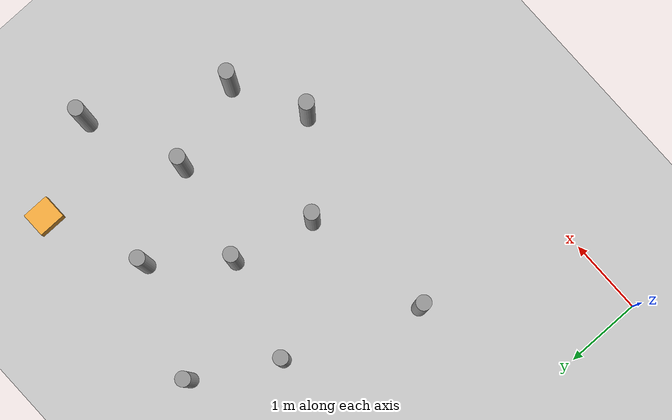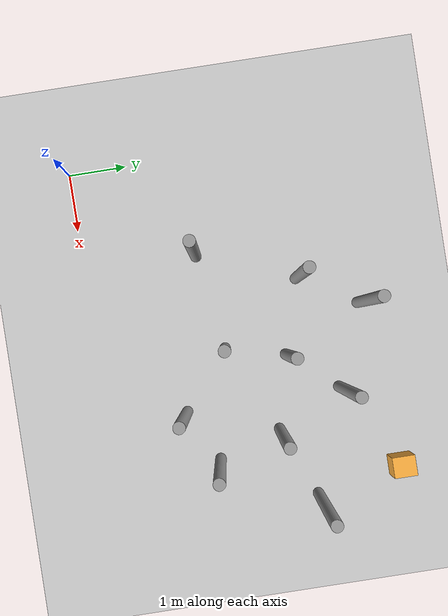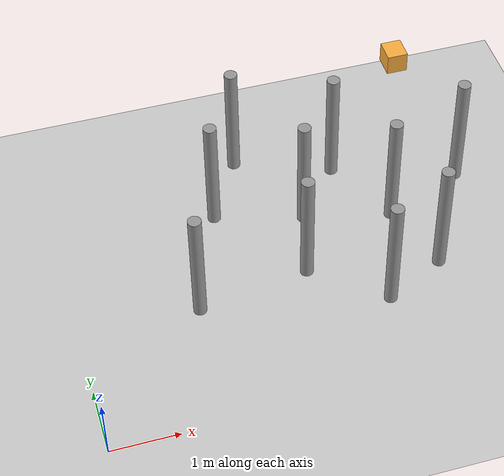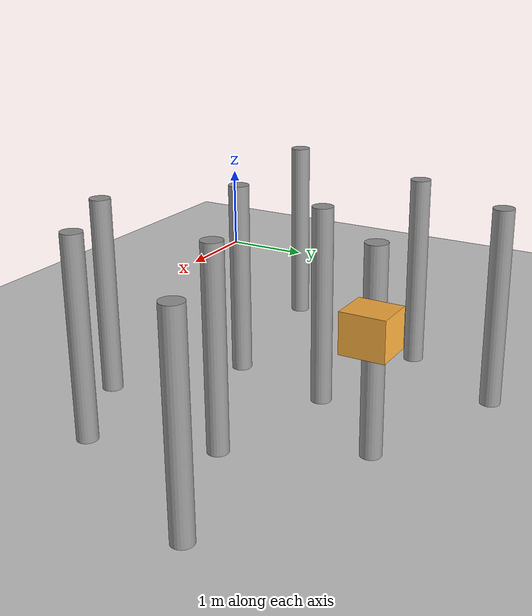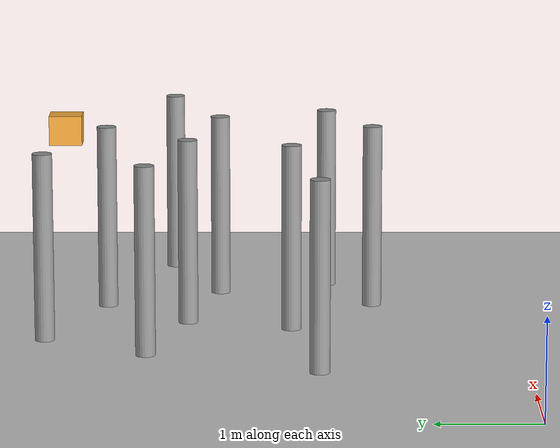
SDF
<sdf version="1.6">
 <world name="default">
  <light name="sun" type="directional">
   <pose>0 0 10 0 -0 0</pose>
   <diffuse>0.8 0.8 0.8 1</diffuse>
   <specular>0.2 0.2 0.2 1</specular>
   <attenuation>
    <range>1000</range>
    <constant>0.9</constant>
    <linear>0.01</linear>
    <quadratic>0.001</quadratic>
   </attenuation>
   <direction>-0.5 0.1 -0.9</direction>
  </light>
  <plugin name="ros_interface_plugin" filename="librotors_gazebo_ros_interface_plugin.so"/>
  <model name="ground_plane">
   <static>1</static>
   <link name="link">
    <collision name="collision">
     <geometry><plane><normal>0 0 1</normal><size>100 100</size></plane></geometry>
     <surface>
      <contact><collide_bitmask>65535</collide_bitmask></contact>
      <friction><ode><mu>100</mu><mu2>50</mu2></ode></friction>
     </surface>
    </collision>
    <visual name="visual">
     <cast_shadows>0</cast_shadows>
     <geometry><plane><normal>0 0 1</normal><size>100 100</size></plane></geometry>
     <material>
      <script><uri>file://media/materials/scripts/gazebo.material</uri><name>Gazebo/Grey</name></script>
     </material>
    </visual>
   </link>
  </model>
  <gravity>0 0 -9.8</gravity>
  <magnetic_field>6e-06 2.3e-05 -4.2e-05</magnetic_field>
  <atmosphere type="adiabatic"/>
  <physics name="default_physics" default="0" type="ode">
   <max_step_size>0.001</max_step_size>
   <real_time_factor>1</real_time_factor>
   <real_time_update_rate>1000</real_time_update_rate>
  </physics>
  <scene><ambient>0.4 0.4 0.4 1</ambient><background>0.7 0.7 0.7 1</background><shadows>1</shadows></scene>
  <spherical_coordinates>
   <surface_model>EARTH_WGS84</surface_model>
   <latitude_deg>0</latitude_deg>
   <longitude_deg>0</longitude_deg>
   <elevation>0</elevation>
   <heading_deg>0</heading_deg>
  </spherical_coordinates>
  <model name="obstacle1">
   <link name="link">
    <inertial>
     <mass>112.569</mass>
     <inertia><ixx>33.2512</ixx><ixy>0</ixy><ixz>0</ixz><iyy>33.2512</iyy><iyz>0</iyz><izz>0.537779</izz></inertia>
    </inertial>
    <visual name="visual">
     <geometry><cylinder><radius>0.097748</radius><length>1.87509</length></cylinder></geometry>
     <material>
      <script><name>Gazebo/Grey</name><uri>file://media/materials/scripts/gazebo.material</uri></script>
      <shader type="pixel"><normal_map>__default__</normal_map></shader>
     </material>
    </visual>
    <collision name="collision">
     <geometry><cylinder><radius>0.097748</radius><length>1.87509</length></cylinder></geometry>
     <surface>
      <friction>
       <ode><mu>1</mu><mu2>1</mu2><fdir1>0 0 0</fdir1><slip1>0</slip1><slip2>0</slip2></ode>
       <torsional>
        <coefficient>1</coefficient>
        <patch_radius>0</patch_radius>
        <surface_radius>0</surface_radius>
        <use_patch_radius>1</use_patch_radius>
        <ode><slip>0</slip></ode>
       </torsional>
      </friction>
      <bounce><restitution_coefficient>0</restitution_coefficient><threshold>1e+06</threshold></bounce>
      <contact>
       <collide_without_contact>0</collide_without_contact>
       <collide_without_contact_bitmask>1</collide_without_contact_bitmask>
       <collide_bitmask>1</collide_bitmask>
       <ode>
        <soft_cfm>0</soft_cfm>
        <soft_erp>0.2</soft_erp>
        <kp>1e+13</kp>
        <kd>1</kd>
        <max_vel>0.01</max_vel>
        <min_depth>0</min_depth>
       </ode>
       <bullet>
        <split_impulse>1</split_impulse>
        <split_impulse_penetration_threshold>-0.01</split_impulse_penetration_threshold>
        <soft_cfm>0</soft_cfm>
        <soft_erp>0.2</soft_erp>
        <kp>1e+13</kp>
        <kd>1</kd>
       </bullet>
      </contact>
     </surface>
    </collision>
   </link>
   <static>0</static>
   <pose>3.44469 2.26258 0.937536 0 0 -0.000585</pose>
  </model>
  <model name="obstacle2">
   <link name="link">
    <inertial>
     <mass>112.569</mass>
     <inertia><ixx>33.2512</ixx><ixy>0</ixy><ixz>0</ixz><iyy>33.2512</iyy><iyz>0</iyz><izz>0.537779</izz></inertia>
    </inertial>
    <visual name="visual">
     <geometry><cylinder><radius>0.097748</radius><length>1.87509</length></cylinder></geometry>
     <material>
      <script><name>Gazebo/Grey</name><uri>file://media/materials/scripts/gazebo.material</uri></script>
      <shader type="pixel"><normal_map>__default__</normal_map></shader>
     </material>
    </visual>
    <collision name="collision">
     <geometry><cylinder><radius>0.097748</radius><length>1.87509</length></cylinder></geometry>
     <surface>
      <friction>
       <ode><mu>1</mu><mu2>1</mu2><fdir1>0 0 0</fdir1><slip1>0</slip1><slip2>0</slip2></ode>
       <torsional>
        <coefficient>1</coefficient>
        <patch_radius>0</patch_radius>
        <surface_radius>0</surface_radius>
        <use_patch_radius>1</use_patch_radius>
        <ode><slip>0</slip></ode>
       </torsional>
      </friction>
      <bounce><restitution_coefficient>0</restitution_coefficient><threshold>1e+06</threshold></bounce>
      <contact>
       <collide_without_contact>0</collide_without_contact>
       <collide_without_contact_bitmask>1</collide_without_contact_bitmask>
       <collide_bitmask>1</collide_bitmask>
       <ode>
        <soft_cfm>0</soft_cfm>
        <soft_erp>0.2</soft_erp>
        <kp>1e+13</kp>
        <kd>1</kd>
        <max_vel>0.01</max_vel>
        <min_depth>0</min_depth>
       </ode>
       <bullet>
        <split_impulse>1</split_impulse>
        <split_impulse_penetration_threshold>-0.01</split_impulse_penetration_threshold>
        <soft_cfm>0</soft_cfm>
        <soft_erp>0.2</soft_erp>
        <kp>1e+13</kp>
        <kd>1</kd>
       </bullet>
      </contact>
     </surface>
    </collision>
   </link>
   <static>0</static>
   <pose>2.41446 3.68091 0.937536 0 0 -0.000526</pose>
  </model>
  <model name="obstacle3">
   <link name="link">
    <inertial>
     <mass>112.569</mass>
     <inertia><ixx>33.2512</ixx><ixy>0</ixy><ixz>0</ixz><iyy>33.2512</iyy><iyz>0</iyz><izz>0.537779</izz></inertia>
    </inertial>
    <visual name="visual">
     <geometry><cylinder><radius>0.097748</radius><length>1.87509</length></cylinder></geometry>
     <material>
      <script><name>Gazebo/Grey</name><uri>file://media/materials/scripts/gazebo.material</uri></script>
      <shader type="pixel"><normal_map>__default__</normal_map></shader>
     </material>
    </visual>
    <collision name="collision">
     <geometry><cylinder><radius>0.097748</radius><length>1.87509</length></cylinder></geometry>
     <surface>
      <friction>
       <ode><mu>1</mu><mu2>1</mu2><fdir1>0 0 0</fdir1><slip1>0</slip1><slip2>0</slip2></ode>
       <torsional>
        <coefficient>1</coefficient>
        <patch_radius>0</patch_radius>
        <surface_radius>0</surface_radius>
        <use_patch_radius>1</use_patch_radius>
        <ode><slip>0</slip></ode>
       </torsional>
      </friction>
      <bounce><restitution_coefficient>0</restitution_coefficient><threshold>1e+06</threshold></bounce>
      <contact>
       <collide_without_contact>0</collide_without_contact>
       <collide_without_contact_bitmask>1</collide_without_contact_bitmask>
       <collide_bitmask>1</collide_bitmask>
       <ode>
        <soft_cfm>0</soft_cfm>
        <soft_erp>0.2</soft_erp>
        <kp>1e+13</kp>
        <kd>1</kd>
        <max_vel>0.01</max_vel>
        <min_depth>0</min_depth>
       </ode>
       <bullet>
        <split_impulse>1</split_impulse>
        <split_impulse_penetration_threshold>-0.01</split_impulse_penetration_threshold>
        <soft_cfm>0</soft_cfm>
        <soft_erp>0.2</soft_erp>
        <kp>1e+13</kp>
        <kd>1</kd>
       </bullet>
      </contact>
     </surface>
    </collision>
   </link>
   <static>0</static>
   <pose>4.42025 4.1502 0.937536 0 0 -0.000546</pose>
  </model>
  <model name="obstacle4">
   <link name="link">
    <inertial>
     <mass>112.569</mass>
     <inertia><ixx>33.2512</ixx><ixy>0</ixy><ixz>0</ixz><iyy>33.2512</iyy><iyz>0</iyz><izz>0.537779</izz></inertia>
    </inertial>
    <visual name="visual">
     <geometry><cylinder><radius>0.097748</radius><length>1.87509</length></cylinder></geometry>
     <material>
      <script><name>Gazebo/Grey</name><uri>file://media/materials/scripts/gazebo.material</uri></script>
      <shader type="pixel"><normal_map>__default__</normal_map></shader>
     </material>
    </visual>
    <collision name="collision">
     <geometry><cylinder><radius>0.097748</radius><length>1.87509</length></cylinder></geometry>
     <surface>
      <friction>
       <ode><mu>1</mu><mu2>1</mu2><fdir1>0 0 0</fdir1><slip1>0</slip1><slip2>0</slip2></ode>
       <torsional>
        <coefficient>1</coefficient>
        <patch_radius>0</patch_radius>
        <surface_radius>0</surface_radius>
        <use_patch_radius>1</use_patch_radius>
        <ode><slip>0</slip></ode>
       </torsional>
      </friction>
      <bounce><restitution_coefficient>0</restitution_coefficient><threshold>1e+06</threshold></bounce>
      <contact>
       <collide_without_contact>0</collide_without_contact>
       <collide_without_contact_bitmask>1</collide_without_contact_bitmask>
       <collide_bitmask>1</collide_bitmask>
       <ode>
        <soft_cfm>0</soft_cfm>
        <soft_erp>0.2</soft_erp>
        <kp>1e+13</kp>
        <kd>1</kd>
        <max_vel>0.01</max_vel>
        <min_depth>0</min_depth>
       </ode>
       <bullet>
        <split_impulse>1</split_impulse>
        <split_impulse_penetration_threshold>-0.01</split_impulse_penetration_threshold>
        <soft_cfm>0</soft_cfm>
        <soft_erp>0.2</soft_erp>
        <kp>1e+13</kp>
        <kd>1</kd>
       </bullet>
      </contact>
     </surface>
    </collision>
   </link>
   <static>0</static>
   <pose>5.00001 3.00001 0.937536 -0 -0 -0.000622</pose>
  </model>
  <model name="obstacle5">
   <link name="link">
    <inertial>
     <mass>112.569</mass>
     <inertia><ixx>33.2512</ixx><ixy>0</ixy><ixz>0</ixz><iyy>33.2512</iyy><iyz>0</iyz><izz>0.537779</izz></inertia>
    </inertial>
    <visual name="visual">
     <geometry><cylinder><radius>0.097748</radius><length>1.87509</length></cylinder></geometry>
     <material>
      <script><name>Gazebo/Grey</name><uri>file://media/materials/scripts/gazebo.material</uri></script>
      <shader type="pixel"><normal_map>__default__</normal_map></shader>
     </material>
    </visual>
    <collision name="collision">
     <geometry><cylinder><radius>0.097748</radius><length>1.87509</length></cylinder></geometry>
     <surface>
      <friction>
       <ode><mu>1</mu><mu2>1</mu2><fdir1>0 0 0</fdir1><slip1>0</slip1><slip2>0</slip2></ode>
       <torsional>
        <coefficient>1</coefficient>
        <patch_radius>0</patch_radius>
        <surface_radius>0</surface_radius>
        <use_patch_radius>1</use_patch_radius>
        <ode><slip>0</slip></ode>
       </torsional>
      </friction>
      <bounce><restitution_coefficient>0</restitution_coefficient><threshold>1e+06</threshold></bounce>
      <contact>
       <collide_without_contact>0</collide_without_contact>
       <collide_without_contact_bitmask>1</collide_without_contact_bitmask>
       <collide_bitmask>1</collide_bitmask>
       <ode>
        <soft_cfm>0</soft_cfm>
        <soft_erp>0.2</soft_erp>
        <kp>1e+13</kp>
        <kd>1</kd>
        <max_vel>0.01</max_vel>
        <min_depth>0</min_depth>
       </ode>
       <bullet>
        <split_impulse>1</split_impulse>
        <split_impulse_penetration_threshold>-0.01</split_impulse_penetration_threshold>
        <soft_cfm>0</soft_cfm>
        <soft_erp>0.2</soft_erp>
        <kp>1e+13</kp>
        <kd>1</kd>
       </bullet>
      </contact>
     </surface>
    </collision>
   </link>
   <static>0</static>
   <pose>3.71381 3.30325 0.937536 0 0 -0.000513</pose>
  </model>
  <model name="obstacle6">
   <link name="link">
    <inertial>
     <mass>112.569</mass>
     <inertia><ixx>33.2512</ixx><ixy>0</ixy><ixz>0</ixz><iyy>33.2512</iyy><iyz>0</iyz><izz>0.537779</izz></inertia>
    </inertial>
    <visual name="visual">
     <geometry><cylinder><radius>0.097748</radius><length>1.87509</length></cylinder></geometry>
     <material>
      <script><name>Gazebo/Grey</name><uri>file://media/materials/scripts/gazebo.material</uri></script>
      <shader type="pixel"><normal_map>__default__</normal_map></shader>
     </material>
    </visual>
    <collision name="collision">
     <geometry><cylinder><radius>0.097748</radius><length>1.87509</length></cylinder></geometry>
     <surface>
      <friction>
       <ode><mu>1</mu><mu2>1</mu2><fdir1>0 0 0</fdir1><slip1>0</slip1><slip2>0</slip2></ode>
       <torsional>
        <coefficient>1</coefficient>
        <patch_radius>0</patch_radius>
        <surface_radius>0</surface_radius>
        <use_patch_radius>1</use_patch_radius>
        <ode><slip>0</slip></ode>
       </torsional>
      </friction>
      <bounce><restitution_coefficient>0</restitution_coefficient><threshold>1e+06</threshold></bounce>
      <contact>
       <collide_without_contact>0</collide_without_contact>
       <collide_without_contact_bitmask>1</collide_without_contact_bitmask>
       <collide_bitmask>1</collide_bitmask>
       <ode>
        <soft_cfm>0</soft_cfm>
        <soft_erp>0.2</soft_erp>
        <kp>1e+13</kp>
        <kd>1</kd>
        <max_vel>0.01</max_vel>
        <min_depth>0</min_depth>
       </ode>
       <bullet>
        <split_impulse>1</split_impulse>
        <split_impulse_penetration_threshold>-0.01</split_impulse_penetration_threshold>
        <soft_cfm>0</soft_cfm>
        <soft_erp>0.2</soft_erp>
        <kp>1e+13</kp>
        <kd>1</kd>
       </bullet>
      </contact>
     </surface>
    </collision>
   </link>
   <static>0</static>
   <pose>4.45657 1.43299 0.93754 0 0 -0.001291</pose>
  </model>
  <model name="obstacle7">
   <link name="link">
    <inertial>
     <mass>112.569</mass>
     <inertia><ixx>33.2512</ixx><ixy>0</ixy><ixz>0</ixz><iyy>33.2512</iyy><iyz>0</iyz><izz>0.537779</izz></inertia>
    </inertial>
    <visual name="visual">
     <geometry><cylinder><radius>0.097748</radius><length>1.87509</length></cylinder></geometry>
     <material>
      <script><name>Gazebo/Grey</name><uri>file://media/materials/scripts/gazebo.material</uri></script>
      <shader type="pixel"><normal_map>__default__</normal_map></shader>
     </material>
    </visual>
    <collision name="collision">
     <geometry><cylinder><radius>0.097748</radius><length>1.87509</length></cylinder></geometry>
     <surface>
      <friction>
       <ode><mu>1</mu><mu2>1</mu2><fdir1>0 0 0</fdir1><slip1>0</slip1><slip2>0</slip2></ode>
       <torsional>
        <coefficient>1</coefficient>
        <patch_radius>0</patch_radius>
        <surface_radius>0</surface_radius>
        <use_patch_radius>1</use_patch_radius>
        <ode><slip>0</slip></ode>
       </torsional>
      </friction>
      <bounce><restitution_coefficient>0</restitution_coefficient><threshold>1e+06</threshold></bounce>
      <contact>
       <collide_without_contact>0</collide_without_contact>
       <collide_without_contact_bitmask>1</collide_without_contact_bitmask>
       <collide_bitmask>1</collide_bitmask>
       <ode>
        <soft_cfm>0</soft_cfm>
        <soft_erp>0.2</soft_erp>
        <kp>1e+13</kp>
        <kd>1</kd>
        <max_vel>0.01</max_vel>
        <min_depth>0</min_depth>
       </ode>
       <bullet>
        <split_impulse>1</split_impulse>
        <split_impulse_penetration_threshold>-0.01</split_impulse_penetration_threshold>
        <soft_cfm>0</soft_cfm>
        <soft_erp>0.2</soft_erp>
        <kp>1e+13</kp>
        <kd>1</kd>
       </bullet>
      </contact>
     </surface>
    </collision>
   </link>
   <static>0</static>
   <pose>2.99938 4.70126 0.937536 0 -1e-06 -0.0007</pose>
  </model>
  <model name="obstacle8">
   <link name="link">
    <inertial>
     <mass>112.569</mass>
     <inertia><ixx>33.2512</ixx><ixy>0</ixy><ixz>0</ixz><iyy>33.2512</iyy><iyz>0</iyz><izz>0.537779</izz></inertia>
    </inertial>
    <visual name="visual">
     <geometry><cylinder><radius>0.097748</radius><length>1.87509</length></cylinder></geometry>
     <material>
      <script><name>Gazebo/Grey</name><uri>file://media/materials/scripts/gazebo.material</uri></script>
      <shader type="pixel"><normal_map>__default__</normal_map></shader>
     </material>
    </visual>
    <collision name="collision">
     <geometry><cylinder><radius>0.097748</radius><length>1.87509</length></cylinder></geometry>
     <surface>
      <friction>
       <ode><mu>1</mu><mu2>1</mu2><fdir1>0 0 0</fdir1><slip1>0</slip1><slip2>0</slip2></ode>
       <torsional>
        <coefficient>1</coefficient>
        <patch_radius>0</patch_radius>
        <surface_radius>0</surface_radius>
        <use_patch_radius>1</use_patch_radius>
        <ode><slip>0</slip></ode>
       </torsional>
      </friction>
      <bounce><restitution_coefficient>0</restitution_coefficient><threshold>1e+06</threshold></bounce>
      <contact>
       <collide_without_contact>0</collide_without_contact>
       <collide_without_contact_bitmask>1</collide_without_contact_bitmask>
       <collide_bitmask>1</collide_bitmask>
       <ode>
        <soft_cfm>0</soft_cfm>
        <soft_erp>0.2</soft_erp>
        <kp>1e+13</kp>
        <kd>1</kd>
        <max_vel>0.01</max_vel>
        <min_depth>0</min_depth>
       </ode>
       <bullet>
        <split_impulse>1</split_impulse>
        <split_impulse_penetration_threshold>-0.01</split_impulse_penetration_threshold>
        <soft_cfm>0</soft_cfm>
        <soft_erp>0.2</soft_erp>
        <kp>1e+13</kp>
        <kd>1</kd>
       </bullet>
      </contact>
     </surface>
    </collision>
   </link>
   <static>0</static>
   <pose>5.36686 1.89128 0.937536 0 0 -0.000722</pose>
  </model>
  <model name="obstacle9">
   <link name="link">
    <inertial>
     <mass>112.569</mass>
     <inertia><ixx>33.2512</ixx><ixy>0</ixy><ixz>0</ixz><iyy>33.2512</iyy><iyz>0</iyz><izz>0.537779</izz></inertia>
    </inertial>
    <visual name="visual">
     <geometry><cylinder><radius>0.097748</radius><length>1.87509</length></cylinder></geometry>
     <material>
      <script><name>Gazebo/Grey</name><uri>file://media/materials/scripts/gazebo.material</uri></script>
      <shader type="pixel"><normal_map>__default__</normal_map></shader>
     </material>
    </visual>
    <collision name="collision">
     <geometry><cylinder><radius>0.097748</radius><length>1.87509</length></cylinder></geometry>
     <surface>
      <friction>
       <ode><mu>1</mu><mu2>1</mu2><fdir1>0 0 0</fdir1><slip1>0</slip1><slip2>0</slip2></ode>
       <torsional>
        <coefficient>1</coefficient>
        <patch_radius>0</patch_radius>
        <surface_radius>0</surface_radius>
        <use_patch_radius>1</use_patch_radius>
        <ode><slip>0</slip></ode>
       </torsional>
      </friction>
      <bounce><restitution_coefficient>0</restitution_coefficient><threshold>1e+06</threshold></bounce>
      <contact>
       <collide_without_contact>0</collide_without_contact>
       <collide_without_contact_bitmask>1</collide_without_contact_bitmask>
       <collide_bitmask>1</collide_bitmask>
       <ode>
        <soft_cfm>0</soft_cfm>
        <soft_erp>0.2</soft_erp>
        <kp>1e+13</kp>
        <kd>1</kd>
        <max_vel>0.01</max_vel>
        <min_depth>0</min_depth>
       </ode>
       <bullet>
        <split_impulse>1</split_impulse>
        <split_impulse_penetration_threshold>-0.01</split_impulse_penetration_threshold>
        <soft_cfm>0</soft_cfm>
        <soft_erp>0.2</soft_erp>
        <kp>1e+13</kp>
        <kd>1</kd>
       </bullet>
      </contact>
     </surface>
    </collision>
   </link>
   <static>0</static>
   <pose>6.23273 3.50693 0.937544 0 0 -0.000812</pose>
  </model>
  <model name="obstacle0">
   <link name="link">
    <inertial>
     <mass>112.569</mass>
     <inertia><ixx>33.2512</ixx><ixy>0</ixy><ixz>0</ixz><iyy>33.2512</iyy><iyz>0</iyz><izz>0.537779</izz></inertia>
    </inertial>
    <visual name="visual">
     <geometry><cylinder><radius>0.097748</radius><length>1.87509</length></cylinder></geometry>
     <material>
      <script><name>Gazebo/Grey</name><uri>file://media/materials/scripts/gazebo.material</uri></script>
      <shader type="pixel"><normal_map>__default__</normal_map></shader>
     </material>
    </visual>
    <collision name="collision">
     <geometry><cylinder><radius>0.097748</radius><length>1.87509</length></cylinder></geometry>
     <surface>
      <friction>
       <ode><mu>1</mu><mu2>1</mu2><fdir1>0 0 0</fdir1><slip1>0</slip1><slip2>0</slip2></ode>
       <torsional>
        <coefficient>1</coefficient>
        <patch_radius>0</patch_radius>
        <surface_radius>0</surface_radius>
        <use_patch_radius>1</use_patch_radius>
        <ode><slip>0</slip></ode>
       </torsional>
      </friction>
      <bounce><restitution_coefficient>0</restitution_coefficient><threshold>1e+06</threshold></bounce>
      <contact>
       <collide_without_contact>0</collide_without_contact>
       <collide_without_contact_bitmask>1</collide_without_contact_bitmask>
       <collide_bitmask>1</collide_bitmask>
       <ode>
        <soft_cfm>0</soft_cfm>
        <soft_erp>0.2</soft_erp>
        <kp>1e+13</kp>
        <kd>1</kd>
        <max_vel>0.01</max_vel>
        <min_depth>0</min_depth>
       </ode>
       <bullet>
        <split_impulse>1</split_impulse>
        <split_impulse_penetration_threshold>-0.01</split_impulse_penetration_threshold>
        <soft_cfm>0</soft_cfm>
        <soft_erp>0.2</soft_erp>
        <kp>1e+13</kp>
        <kd>1</kd>
       </bullet>
      </contact>
     </surface>
    </collision>
   </link>
   <static>0</static>
   <pose>1.76447 1.99687 0.937544 -1e-06 -0 -0.000586</pose>
  </model>
  <model name="destination">
   <link name="link">
    <inertial>
     <mass>1</mass>
     <inertia>
      <ixx>0.166667</ixx>
      <ixy>0</ixy>
      <ixz>0</ixz>
      <iyy>0.166667</iyy>
      <iyz>0</iyz>
      <izz>0.166667</izz>
     </inertia>
    </inertial>
    <gravity>0</gravity>
    <visual name="visual">
     <geometry><box><size>0.308325 0.34505 0.311204</size></box></geometry>
     <material>
      <script><name>Gazebo/Grey</name><uri>file://media/materials/scripts/gazebo.material</uri></script>
      <shader type="pixel"><normal_map>__default__</normal_map></shader>
      <ambient>0.988 0.686 0.243 1</ambient>
      <diffuse>0.988 0.686 0.243 1</diffuse>
      <specular>0.988 0.686 0.243 1</specular>
      <emissive>0.988 0.686 0.243 1</emissive>
     </material>
    </visual>
    <collision name="collision">
     <geometry><box><size>0.308325 0.34505 0.311204</size></box></geometry>
     <surface>
      <friction>
       <ode><mu>1</mu><mu2>1</mu2><fdir1>0 0 0</fdir1><slip1>0</slip1><slip2>0</slip2></ode>
       <torsional>
        <coefficient>1</coefficient>
        <patch_radius>0</patch_radius>
        <surface_radius>0</surface_radius>
        <use_patch_radius>1</use_patch_radius>
        <ode><slip>0</slip></ode>
       </torsional>
      </friction>
      <bounce><restitution_coefficient>0</restitution_coefficient><threshold>1e+06</threshold></bounce>
      <contact>
       <collide_without_contact>0</collide_without_contact>
       <collide_without_contact_bitmask>1</collide_without_contact_bitmask>
       <collide_bitmask>1</collide_bitmask>
       <ode>
        <soft_cfm>0</soft_cfm>
        <soft_erp>0.2</soft_erp>
        <kp>1e+13</kp>
        <kd>1</kd>
        <max_vel>0.01</max_vel>
        <min_depth>0</min_depth>
       </ode>
       <bullet>
        <split_impulse>1</split_impulse>
        <split_impulse_penetration_threshold>-0.01</split_impulse_penetration_threshold>
        <soft_cfm>0</soft_cfm>
        <soft_erp>0.2</soft_erp>
        <kp>1e+13</kp>
        <kd>1</kd>
       </bullet>
      </contact>
     </surface>
    </collision>
   </link>
   <static>0</static>
   <pose>5.54007 4.63947 1.64304 0 -0 0</pose>
  </model>
 </world>
</sdf>
